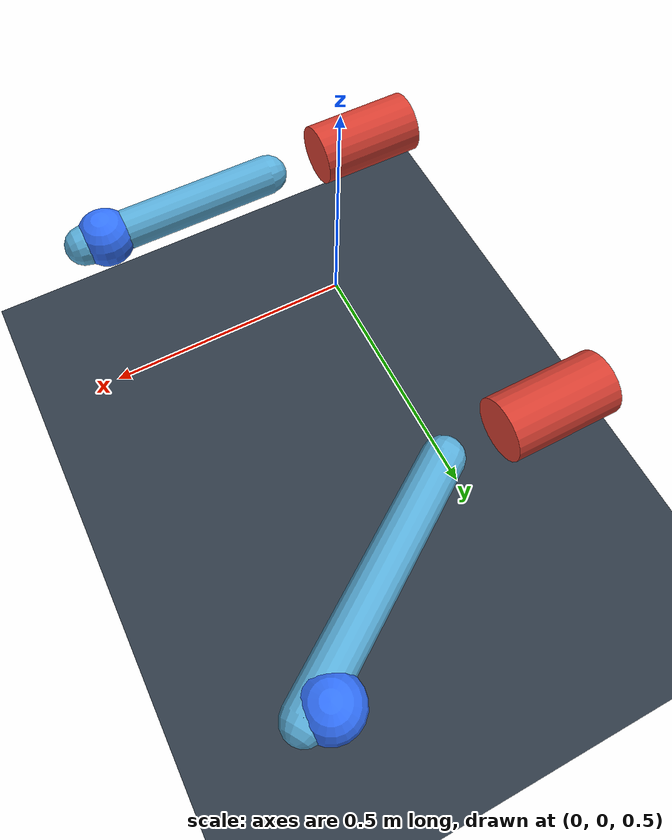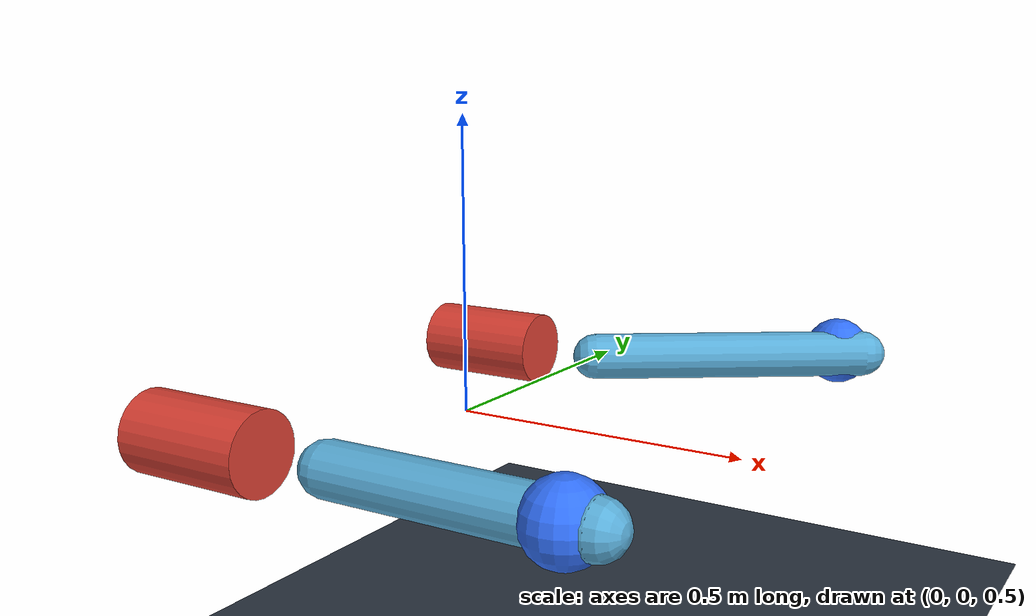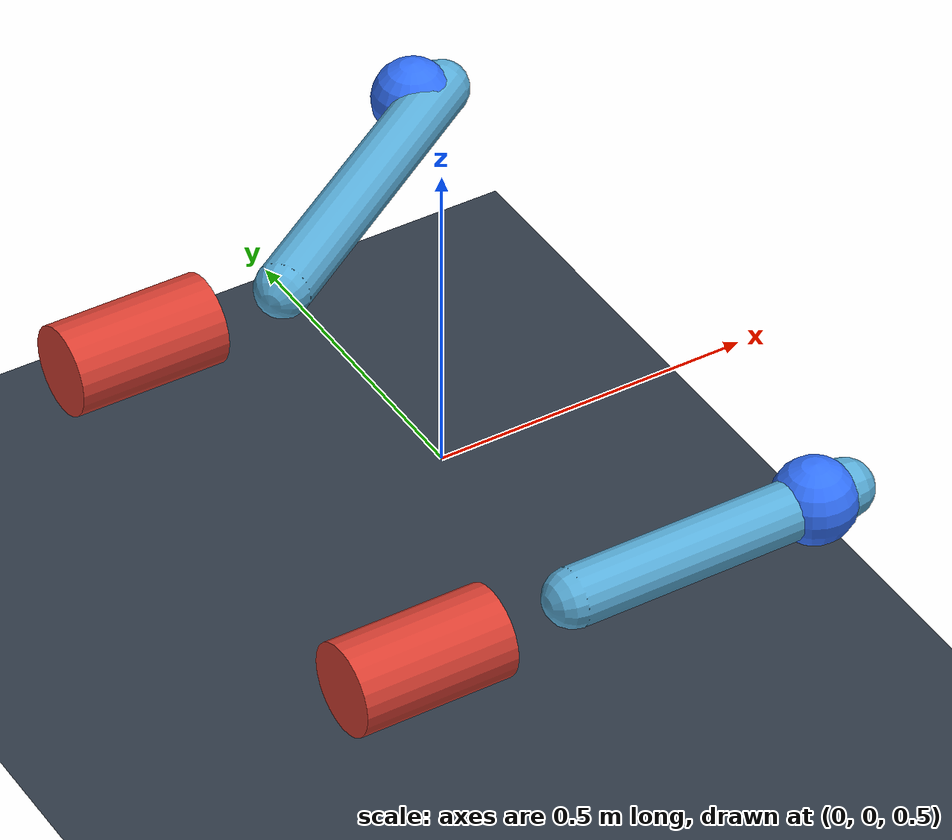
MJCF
<mujoco model="slider_crank">
  <compiler angle="degree" autolimits="true"/>
  <option gravity="0 0 0"/>

  <visual>
    <scale slidercrank="0.08"/>
    <rgba slidercrank="0.55 0.40 0.85 1" crankbroken="1 0.16 0.10 1"/>
  </visual>

  <worldbody>
    <geom type="plane" size="0 0 0.05" rgba="0.18 0.22 0.27 1"/>
    <light name="key" type="directional" pos="1 -2 4" dir="-0.2 0.3 -1"/>
    <camera name="overview" pos="1.7 -3.2 2.0" xyaxes="0.88 0.47 0 -0.25 0.46 0.85"/>

    <site name="slider" type="cylinder" pos="-0.25 -0.35 0.5" zaxis="1 0 0"
          size="0.07 0.12" rgba="0.85 0.25 0.20 1"/>
    <site name="slider_broken" type="cylinder" pos="-0.25 0.45 0.5" zaxis="1 0 0"
          size="0.07 0.12" rgba="0.85 0.25 0.20 1"/>

    <body name="arm" pos="0 -0.35 0.5">
      <joint name="hinge" type="hinge" axis="0 0 1" damping="0.1"/>
      <geom type="capsule" fromto="0 0 0 0.45 0 0" size="0.045"
            rgba="0.35 0.68 0.85 1"/>
      <site name="crank" pos="0.40 0 0" size="0.065" rgba="0.20 0.45 1 1"/>
    </body>

    <body name="broken_arm" pos="0 0.45 0.5">
      <joint name="broken_hinge" type="hinge" axis="0 0 1" damping="0.1"/>
      <geom type="capsule" fromto="0 0 0 0.45 0.30 0" size="0.045"
            rgba="0.35 0.68 0.85 1"/>
      <site name="crank_broken" pos="0.40 0.30 0" size="0.065" rgba="0.20 0.45 1 1"/>
    </body>
  </worldbody>

  <actuator>
    <position name="valid" cranksite="crank" slidersite="slider" cranklength="0.18" kp="20"/>
    <position name="broken" cranksite="crank_broken" slidersite="slider_broken"
              cranklength="0.10" kp="20"/>
  </actuator>
</mujoco>
